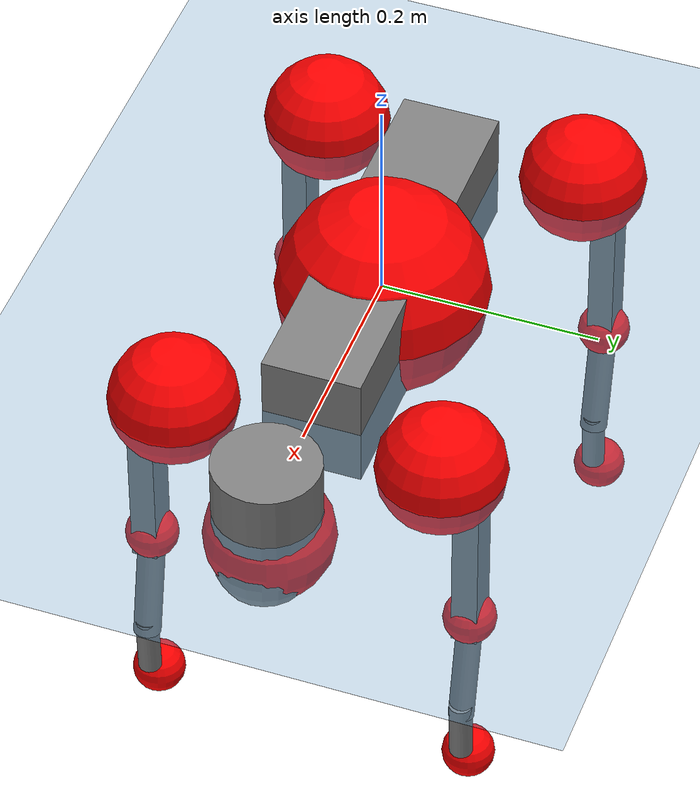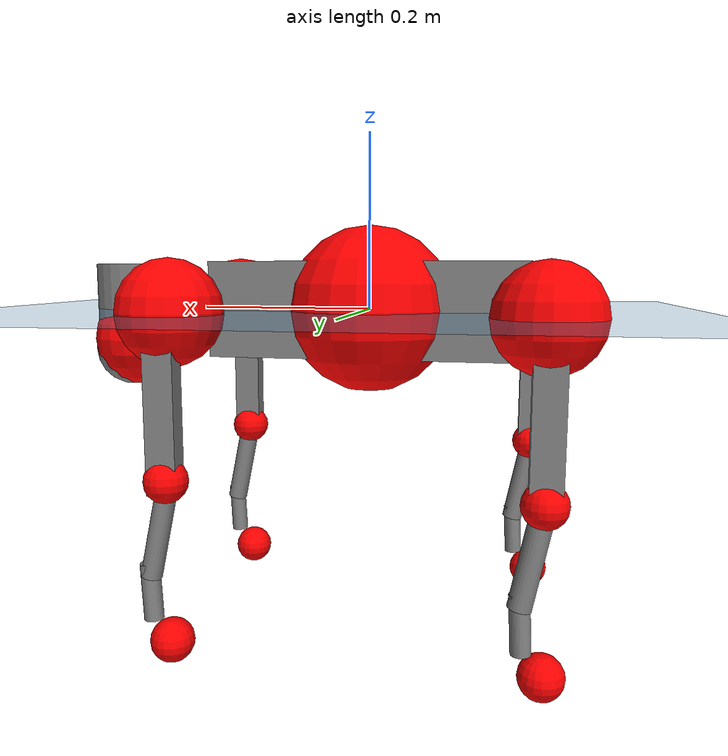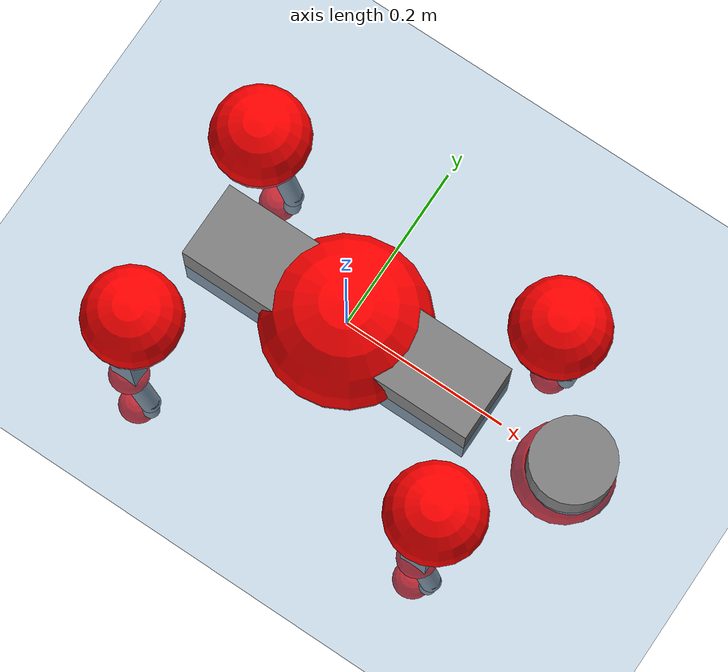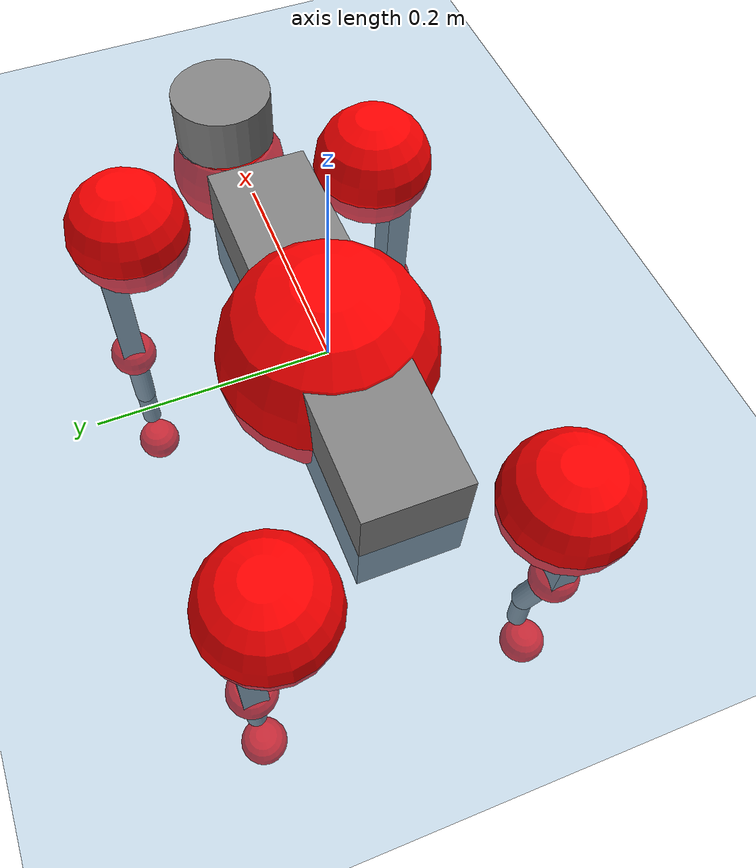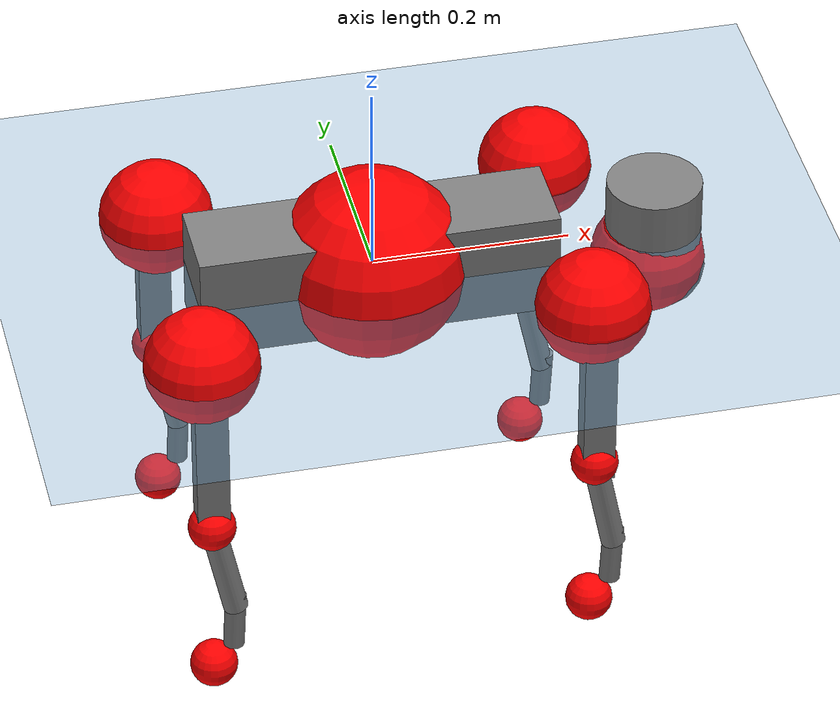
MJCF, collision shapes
<mujoco model="go2">
  <compiler angle="radian" assetdir="assets" balanceinertia="true" inertiafromgeom="false"/>

  <option timestep="0.005" density="1.2" viscosity="2e-05"/>

  <size nkey="1"/>

  <visual>
    <quality shadowsize="8192"/>
    <map shadowclip="0.5"/>
  </visual>

  <default>
    <default class="/">
      <geom contype="0" conaffinity="0" group="1" solref="-1000 -80"/>
      <site size="0.01 0.005 0.005" group="5"/>
      <general forcelimited="true" biastype="affine" gainprm="20" biasprm="0 -20 -0.5"/>
      <default class="go2">
        <joint armature="0.01" damping="0.01" frictionloss="0.2"/>
        <geom condim="1" margin="0.001"/>
        <default class="visual">
          <geom type="mesh" group="2"/>
        </default>
        <default class="collision">
          <geom group="3"/>
          <default class="foot">
            <geom size="0.022 0 0" condim="6" priority="1" friction="0.8 0.02 0.01" solimp="0.015 1 0.022"/>
          </default>
        </default>
        <default class="reward_collision_sphere">
          <geom group="5" rgba="1 0 0 1"/>
        </default>
      </default>
    </default>
  </default>

  <asset>
    <texture type="skybox" colorspace="auto" name="//unnamed_texture_0" builtin="gradient" rgb1="0.95 0.95 0.95" rgb2="0.95 0.95 0.95" width="100" height="600"/>
    <texture type="2d" colorspace="auto" name="texplane" builtin="checker" rgb1="0.345 0.575 0.748" rgb2="0.345 0.575 0.748" markrgb="1 1 1" width="512" height="512"/>
    <material name="MatPlane" class="/" texture="texplane" texuniform="true" texrepeat="2 2" specular="0.9"/>
    <material name="metal" class="/" rgba="0.9 0.95 0.95 1"/>
    <material name="black" class="/" rgba="0 0 0 1"/>
    <material name="white" class="/"/>
    <material name="gray" class="/" rgba="0.671705 0.692426 0.77427 1"/>
    <mesh name="base_0" class="/" file="base_0.obj"/>
    <mesh name="base_1" class="/" file="base_1.obj"/>
    <mesh name="base_2" class="/" file="base_2.obj"/>
    <mesh name="base_3" class="/" file="base_3.obj"/>
    <mesh name="base_4" class="/" file="base_4.obj"/>
    <mesh name="hip_0" class="/" file="hip_0.obj"/>
    <mesh name="hip_1" class="/" file="hip_1.obj"/>
    <mesh name="thigh_0" class="/" file="thigh_0.obj"/>
    <mesh name="thigh_1" class="/" file="thigh_1.obj"/>
    <mesh name="thigh_mirror_0" class="/" file="thigh_mirror_0.obj"/>
    <mesh name="thigh_mirror_1" class="/" file="thigh_mirror_1.obj"/>
    <mesh name="calf_0" class="/" file="calf_0.obj"/>
    <mesh name="calf_1" class="/" file="calf_1.obj"/>
    <mesh name="calf_mirror_0" class="/" file="calf_mirror_0.obj"/>
    <mesh name="calf_mirror_1" class="/" file="calf_mirror_1.obj"/>
    <mesh name="foot" class="/" file="foot.obj"/>
  </asset>

  <worldbody>
    <geom name="floor" class="/" size="100 100 0.125" type="plane" group="0" material="MatPlane"/>
    <light name="toplight_shadow" class="/" pos="0 0 5" dir="0.0990148 0.0990148 -0.990148" type="directional" ambient="0.04 0.04 0.04" diffuse="0.55 0.55 0.55" specular="0.12 0.12 0.12"/>
    <light name="toplight_fill" class="/" pos="0 0 5" dir="0.0990148 0.0990148 -0.990148" type="directional" castshadow="false" ambient="0.04 0.04 0.04" diffuse="0.3 0.3 0.3" specular="0.08 0.08 0.08"/>
    <body name="trunk" childclass="go2" pos="-0.000885046 0.000706232 0.000480224" quat="1 -1.22576e-05 -8.21313e-05 -4.12419e-05">
      <inertial pos="0.0199614 0.000112029 -0.00459584" quat="-0.00122778 0.714596 -0.0005386 0.699536" mass="6.22611" diaginertia="0.113592 0.124214 0.00990912"/>
      <joint name="//unnamed_joint_0" type="free" armature="0" damping="0" frictionloss="0"/>
      <geom name="//unnamed_geom_1" class="visual" material="black" mesh="base_0"/>
      <geom name="//unnamed_geom_2" class="visual" material="black" mesh="base_1"/>
      <geom name="//unnamed_geom_3" class="visual" material="black" mesh="base_2"/>
      <geom name="//unnamed_geom_4" class="visual" material="white" mesh="base_3"/>
      <geom name="//unnamed_geom_5" class="visual" material="gray" mesh="base_4"/>
      <geom name="trunk_1" class="collision" size="0.18156 0.0451246 0.0550182" type="box"/>
      <geom name="trunk_2" class="collision" size="0.0482616 0.0434355" pos="0.288569 0 0.00834257" type="cylinder"/>
      <geom name="trunk_3" class="collision" size="0.0453659" pos="0.296669 0 -0.0500554"/>
      <geom name="//unnamed_geom_9" class="reward_collision_sphere" size="0.0965232"/>
      <geom name="//unnamed_geom_10" class="reward_collision_sphere" size="0.0579139" pos="0.283506 0 -0.0375416"/>
      <site name="imu" pos="-0.0265428 -0.00162511 0.0341539" size="0.00965232"/>
      <camera name="track" pos="0 -2.09783 0" quat="0.707107 0.707107 0 0" mode="trackcom"/>
      <camera name="ego_camera" pos="0.315907 0 0.0375416" quat="-0.5 -0.5 0.5 0.5"/>
      <body name="FL_hip" pos="0.196272 0.0501217 0.000561097" quat="1 0.000137445 0.000287373 -0.000328686">
        <inertial pos="-0.00653191 0.00303872 0.00083282" quat="0.497334 0.500345 0.504408 0.497882" mass="0.609086" diaginertia="0.000937886 0.000752738 0.000192185"/>
        <joint name="FL_hip_joint" pos="0 0 0" axis="0.999999 9.19422e-05 0.00172296" range="-1.04271 1.04343" armature="0.00944914" damping="0.00668735" frictionloss="0.187051"/>
        <geom name="//unnamed_geom_11" class="visual" material="metal" mesh="hip_0"/>
        <geom name="//unnamed_geom_12" class="visual" material="gray" mesh="hip_1"/>
        <geom name="//unnamed_geom_13" class="collision" size="0.0444007 0.0193046" pos="0 0.0839134 0" quat="0.707107 0.707107 0 0" type="cylinder"/>
        <geom name="//unnamed_geom_14" class="reward_collision_sphere" size="0.0579139" pos="0 0.0734242 0"/>
        <body name="FL_thigh" pos="-0.000786398 0.100608 0.000465886" quat="1 -3.62376e-05 -3.766e-05 2.98043e-06">
          <inertial pos="-0.00310158 -0.0230041 -0.0267966" quat="0.82936 0.0860173 -0.0203539 0.551678" mass="1.03291" diaginertia="0.00634656 0.00745133 0.000357571"/>
          <joint name="FL_thigh_joint" pos="0 0 0" axis="-0.000155368 1 0.000223452" stiffness="0.0113367" range="-1.56541 3.48885" armature="0.00939723" damping="0" frictionloss="0.184612"/>
          <geom name="//unnamed_geom_15" class="visual" material="metal" mesh="thigh_0"/>
          <geom name="//unnamed_geom_16" class="visual" material="gray" mesh="thigh_1"/>
          <geom name="//unnamed_geom_17" class="collision" size="0.102797 0.0118241 0.016409" pos="0 0 -0.0888484" quat="0.707107 0 0.707107 0" type="box"/>
          <body name="FL_calf" pos="-0.000909928 -0.000213157 -0.177423" quat="1 0.000305595 -1.99375e-05 -0.000309323">
            <inertial pos="0.00553546 -0.00153793 -0.117041" quat="0.710061 0.000900311 -0.00368556 0.70413" mass="0.217632" diaginertia="0.00158845 0.00183842 2.17055e-05"/>
            <joint name="FL_calf_joint" pos="0 0 0" axis="0.00572852 0.999966 0.00596064" stiffness="0.0018873" range="-2.72801 -0.834125" armature="0.0101525" damping="0.00560163" frictionloss="0.189768"/>
            <geom name="//unnamed_geom_18" class="visual" material="gray" mesh="calf_0"/>
            <geom name="//unnamed_geom_19" class="visual" material="black" mesh="calf_1"/>
            <geom name="FL_calf0" class="collision" size="0.0115828 0.0579139" pos="0.00810018 0 -0.0500554" quat="0.994493 0 -0.104807 0" type="cylinder"/>
            <geom name="//unnamed_geom_21" class="collision" size="0.0106176 0.0313701" pos="0.0202505 0 -0.12347" quat="0.999688 0 0.0249974 0" type="cylinder"/>
            <geom name="//unnamed_geom_22" class="visual" pos="0 0 -0.177697" quat="1 0 0 0" material="black" mesh="foot"/>
            <geom name="FL_foot" class="foot" size="0.0156061" pos="-0.00202505 0 -0.177697"/>
            <geom name="//unnamed_geom_24" class="reward_collision_sphere" size="0.0241308"/>
            <geom name="//unnamed_geom_25" class="reward_collision_sphere" size="0.0241308" pos="-0.00202505 0 -0.177697"/>
            <site name="FL_foot" class="foot" pos="-0.00202505 0 -0.177697" size="0.00965232"/>
          </body>
        </body>
      </body>
      <body name="FR_hip" pos="0.196122 -0.0477297 0.00161767" quat="1 -4.21505e-06 -6.05098e-05 1.19637e-05">
        <inertial pos="-0.00527511 -0.001634 -0.000398717" quat="0.497378 0.504809 0.500231 0.497545" mass="0.616246" diaginertia="0.000927286 0.000745365 0.000194332"/>
        <joint name="FR_hip_joint" pos="0 0 0" axis="0.999997 -0.00256297 -0.000244183" stiffness="0.00451666" range="-1.06879 1.04765" armature="0.00913846" damping="0.0188063" frictionloss="0.202429"/>
        <geom name="//unnamed_geom_26" class="visual" pos="0 1.87003e-09 8.02095e-08" quat="4.63268e-05 1 0 0" material="metal" mesh="hip_0"/>
        <geom name="//unnamed_geom_27" class="visual" pos="0 3.03155e-09 -1.98389e-07" quat="4.63268e-05 1 0 0" material="gray" mesh="hip_1"/>
        <geom name="//unnamed_geom_28" class="collision" size="0.0444007 0.0193046" pos="0 -0.0839134 0" quat="0.707107 0.707107 0 0" type="cylinder"/>
        <geom name="//unnamed_geom_29" class="reward_collision_sphere" size="0.0579139" pos="0 -0.0734242 0"/>
        <body name="FR_thigh" pos="3.77902e-05 -0.100519 0.00139793" quat="1 0.000129912 0.00017596 -5.08614e-06">
          <inertial pos="-0.00302912 0.0223509 -0.0272383" quat="0.552375 -0.018739 0.0841754 0.829123" mass="1.02355" diaginertia="0.0063725 0.00751112 0.000357562"/>
          <joint name="FR_thigh_joint" pos="0 0 0" axis="-0.00311873 -0.999992 -0.00246645" range="-3.49346 1.58053" armature="0.00967557" damping="0.00991698" frictionloss="0.186859"/>
          <geom name="//unnamed_geom_30" class="visual" material="metal" mesh="thigh_mirror_0"/>
          <geom name="//unnamed_geom_31" class="visual" material="gray" mesh="thigh_mirror_1"/>
          <geom name="//unnamed_geom_32" class="collision" size="0.102797 0.0118241 0.016409" pos="0 0 -0.0888484" quat="0.707107 0 0.707107 0" type="box"/>
          <body name="FR_calf" pos="-0.00141961 0.000847216 -0.176799" quat="1 5.19677e-05 1.69564e-05 3.82821e-05">
            <inertial pos="0.00547567 0.000863566 -0.118235" quat="0.702432 -0.00496255 0.00229407 0.711729" mass="0.217481" diaginertia="0.00158521 0.00187026 2.13642e-05"/>
            <joint name="FR_calf_joint" pos="0 0 0" axis="0.00565584 -0.999983 0.00133729" stiffness="0.00252417" range="0.835577 2.72568" armature="0.00951608" damping="0.00385309" frictionloss="0.196652"/>
            <geom name="//unnamed_geom_33" class="visual" material="gray" mesh="calf_mirror_0"/>
            <geom name="//unnamed_geom_34" class="visual" material="black" mesh="calf_mirror_1"/>
            <geom name="FR_calf0" class="collision" size="0.012548 0.0579139" pos="0.0101252 0 -0.0500554" quat="0.995004 0 -0.0998334 0" type="cylinder"/>
            <geom name="//unnamed_geom_36" class="collision" size="0.0106176 0.0313701" pos="0.0202505 0 -0.12347" quat="0.999688 0 0.0249974 0" type="cylinder"/>
            <geom name="//unnamed_geom_37" class="visual" pos="0 0 -0.177697" quat="1 0 0 0" material="black" mesh="foot"/>
            <geom name="FR_foot" class="foot" size="0.0216705" pos="-0.00202505 0 -0.177697"/>
            <geom name="//unnamed_geom_39" class="reward_collision_sphere" size="0.0241308"/>
            <geom name="//unnamed_geom_40" class="reward_collision_sphere" size="0.0241308" pos="-0.00202505 0 -0.177697"/>
            <site name="FR_foot" class="foot" pos="-0.00202505 0 -0.177697" size="0.00965232"/>
          </body>
        </body>
      </body>
      <body name="RL_hip" pos="-0.195129 0.0480019 -0.00151676" quat="1 0.000751222 0.000398761 -0.000256035">
        <inertial pos="0.00602915 0.00206764 0.000427931" quat="0.505507 0.498317 0.496935 0.499197" mass="0.610778" diaginertia="0.000937282 0.000748348 0.000192432"/>
        <joint name="RL_hip_joint" pos="0 0 0" axis="-0.999819 -0.0176583 0.00701931" range="-1.06092 1.05336" armature="0.00961386" damping="0.0184345" frictionloss="0.188906"/>
        <geom name="//unnamed_geom_41" class="visual" pos="-1.55298e-09 0 -3.04419e-07" quat="4.63268e-05 0 1 0" material="metal" mesh="hip_0"/>
        <geom name="//unnamed_geom_42" class="visual" pos="-2.51756e-09 0 -2.69977e-07" quat="4.63268e-05 0 1 0" material="gray" mesh="hip_1"/>
        <geom name="//unnamed_geom_43" class="collision" size="0.0444007 0.0193046" pos="0 0.0839134 0" quat="0.707107 0.707107 0 0" type="cylinder"/>
        <geom name="//unnamed_geom_44" class="reward_collision_sphere" size="0.0579139" pos="0 0.0734242 0"/>
        <body name="RL_thigh" pos="-0.00101683 0.0986963 -0.000993134" quat="1 0.000145419 0.000129647 -0.000364283">
          <inertial pos="-0.00386624 -0.0237153 -0.0277842" quat="0.829603 0.0839926 -0.0208824 0.551605" mass="1.03675" diaginertia="0.00634801 0.00745234 0.000354704"/>
          <joint name="RL_thigh_joint" pos="0 0 0" axis="0.000858946 0.999973 0.00733934" range="-0.528637 4.54556" armature="0.0099994" damping="0.000126326" frictionloss="0.195542"/>
          <geom name="//unnamed_geom_45" class="visual" material="metal" mesh="thigh_0"/>
          <geom name="//unnamed_geom_46" class="visual" material="gray" mesh="thigh_1"/>
          <geom name="//unnamed_geom_47" class="collision" size="0.102797 0.0118241 0.016409" pos="0 0 -0.0888484" quat="0.707107 0 0.707107 0" type="box"/>
          <body name="RL_calf" pos="8.36832e-05 -0.000192862 -0.17939" quat="1 -6.27045e-05 -0.000169695 1.80882e-05">
            <inertial pos="0.00636262 -0.000416453 -0.118723" quat="0.710676 0.0013596 -0.00452772 0.703503" mass="0.217235" diaginertia="0.00158938 0.00185649 2.16025e-05"/>
            <joint name="RL_calf_joint" pos="0 0 0" axis="-0.00617103 0.999939 0.00911579" range="-2.726 -0.837044" armature="0.00983651" damping="0" frictionloss="0.194165"/>
            <geom name="//unnamed_geom_48" class="visual" material="gray" mesh="calf_0"/>
            <geom name="//unnamed_geom_49" class="visual" material="black" mesh="calf_1"/>
            <geom name="RL_calf0" class="collision" size="0.012548 0.0579139" pos="0.0101252 0 -0.0500554" quat="0.995004 0 -0.0998334 0" type="cylinder"/>
            <geom name="//unnamed_geom_51" class="collision" size="0.0106176 0.0313701" pos="0.0202505 0 -0.12347" quat="0.999688 0 0.0249974 0" type="cylinder"/>
            <geom name="//unnamed_geom_52" class="visual" pos="0 0 -0.177697" quat="1 0 0 0" material="black" mesh="foot"/>
            <geom name="RL_foot" class="foot" size="0.0189528" pos="-0.00202505 0 -0.177697"/>
            <geom name="//unnamed_geom_54" class="reward_collision_sphere" size="0.0241308"/>
            <geom name="//unnamed_geom_55" class="reward_collision_sphere" size="0.0241308" pos="-0.00202505 0 -0.177697"/>
            <site name="RL_foot" class="foot" pos="-0.00202505 0 -0.177697" size="0.00965232"/>
          </body>
        </body>
      </body>
      <body name="RR_hip" pos="-0.195828 -0.051027 -0.00243094" quat="1 -0.000376443 -0.000242472 5.74555e-06">
        <inertial pos="0.00536808 -0.00221099 2.88087e-05" quat="0.500291 0.497789 0.498384 0.503516" mass="0.608673" diaginertia="0.000929059 0.000747851 0.000195104"/>
        <joint name="RR_hip_joint" pos="0 0 0" axis="-0.999998 0.00194535 0.000517707" range="-1.03705 1.04839" armature="0.0100625" damping="0.0140301" frictionloss="0.19105"/>
        <geom name="//unnamed_geom_56" class="visual" pos="1.55424e-09 1.87003e-09 -3.84629e-07" quat="2.14617e-09 4.63268e-05 4.63268e-05 -1" material="metal" mesh="hip_0"/>
        <geom name="//unnamed_geom_57" class="visual" pos="2.51445e-09 3.03155e-09 -7.15878e-08" quat="2.14617e-09 4.63268e-05 4.63268e-05 -1" material="gray" mesh="hip_1"/>
        <geom name="//unnamed_geom_58" class="collision" size="0.0444007 0.0193046" pos="0 -0.0839134 0" quat="0.707107 0.707107 0 0" type="cylinder"/>
        <geom name="//unnamed_geom_59" class="reward_collision_sphere" size="0.0579139" pos="0 -0.0734242 0"/>
        <body name="RR_thigh" pos="0.00102918 -0.100541 -0.00182727" quat="1 -5.89901e-05 3.52549e-05 -6.29165e-05">
          <inertial pos="-0.00357079 0.0241673 -0.0276098" quat="0.551604 -0.0200929 0.0847352 0.829547" mass="1.05179" diaginertia="0.00640958 0.00744116 0.000354729"/>
          <joint name="RR_thigh_joint" pos="0 0 0" axis="0.00246449 -0.999981 -0.00566178" stiffness="0.00150523" range="-4.54873 0.506065" armature="0.00918749" damping="0.0156405" frictionloss="0.19054"/>
          <geom name="//unnamed_geom_60" class="visual" material="metal" mesh="thigh_mirror_0"/>
          <geom name="//unnamed_geom_61" class="visual" material="gray" mesh="thigh_mirror_1"/>
          <geom name="//unnamed_geom_62" class="collision" size="0.102797 0.0118241 0.016409" pos="0 0 -0.0888484" quat="0.707107 0 0.707107 0" type="box"/>
          <body name="RR_calf" pos="-0.000685935 -0.00156144 -0.178711" quat="1 6.92854e-05 -7.11046e-05 -6.92671e-05">
            <inertial pos="0.00751157 0.000587701 -0.119056" quat="0.70266 -0.00601664 0.00296781 0.711494" mass="0.217533" diaginertia="0.00154698 0.00184841 2.09842e-05"/>
            <joint name="RR_calf_joint" pos="0 0 0" axis="-0.00123405 -0.999995 -0.00274513" range="0.825844 2.75543" armature="0.00985017" damping="0.0102521" frictionloss="0.195316"/>
            <geom name="//unnamed_geom_63" class="visual" material="gray" mesh="calf_mirror_0"/>
            <geom name="//unnamed_geom_64" class="visual" material="black" mesh="calf_mirror_1"/>
            <geom name="RR_calf0" class="collision" size="0.012548 0.0579139" pos="0.0101252 0 -0.0500554" quat="0.995004 0 -0.0998334 0" type="cylinder"/>
            <geom name="//unnamed_geom_66" class="collision" size="0.0106176 0.0313701" pos="0.0202505 0 -0.12347" quat="0.999688 0 0.0249974 0" type="cylinder"/>
            <geom name="//unnamed_geom_67" class="visual" pos="0 0 -0.177697" quat="1 0 0 0" material="black" mesh="foot"/>
            <geom name="RR_foot" class="foot" size="0.0231158" pos="-0.00202505 0 -0.177697"/>
            <geom name="//unnamed_geom_69" class="reward_collision_sphere" size="0.0241308"/>
            <geom name="//unnamed_geom_70" class="reward_collision_sphere" size="0.0241308" pos="-0.00202505 0 -0.177697"/>
            <site name="RR_foot" class="foot" pos="-0.00202505 0 -0.177697" size="0.00965232"/>
          </body>
        </body>
      </body>
    </body>
  </worldbody>

  <contact>
    <pair class="/" geom1="floor" geom2="FL_foot" name="//unnamed_contact_0"/>
    <pair class="/" geom1="floor" geom2="FR_foot" name="//unnamed_contact_1"/>
    <pair class="/" geom1="floor" geom2="RL_foot" name="//unnamed_contact_2"/>
    <pair class="/" geom1="floor" geom2="RR_foot" name="//unnamed_contact_3"/>
  </contact>

  <actuator>
    <general name="FL_hip" class="/" joint="FL_hip_joint" forcerange="-23.0107 23.0107" gainprm="19.3865" biasprm="0 -19.3865 -0.483266"/>
    <general name="FL_thigh" class="/" joint="FL_thigh_joint" forcerange="-23.7104 23.7104" gainprm="19.3865" biasprm="0 -19.3865 -0.483266"/>
    <general name="FL_calf" class="/" joint="FL_calf_joint" forcerange="-43.3895 43.3895" gainprm="19.3865" biasprm="0 -19.3865 -0.483266"/>
    <general name="FR_hip" class="/" joint="FR_hip_joint" forcerange="-23.9146 23.9146" gainprm="19.3865" biasprm="0 -19.3865 -0.483266"/>
    <general name="FR_thigh" class="/" joint="FR_thigh_joint" forcerange="-22.7945 22.7945" gainprm="19.3865" biasprm="0 -19.3865 -0.483266"/>
    <general name="FR_calf" class="/" joint="FR_calf_joint" forcerange="-44.3942 44.3942" gainprm="19.3865" biasprm="0 -19.3865 -0.483266"/>
    <general name="RL_hip" class="/" joint="RL_hip_joint" forcerange="-22.7653 22.7653" gainprm="19.3865" biasprm="0 -19.3865 -0.483266"/>
    <general name="RL_thigh" class="/" joint="RL_thigh_joint" forcerange="-22.9329 22.9329" gainprm="19.3865" biasprm="0 -19.3865 -0.483266"/>
    <general name="RL_calf" class="/" joint="RL_calf_joint" forcerange="-44.2221 44.2221" gainprm="19.3865" biasprm="0 -19.3865 -0.483266"/>
    <general name="RR_hip" class="/" joint="RR_hip_joint" forcerange="-23.1685 23.1685" gainprm="19.3865" biasprm="0 -19.3865 -0.483266"/>
    <general name="RR_thigh" class="/" joint="RR_thigh_joint" forcerange="-22.8459 22.8459" gainprm="19.3865" biasprm="0 -19.3865 -0.483266"/>
    <general name="RR_calf" class="/" joint="RR_calf_joint" forcerange="-45.0566 45.0566" gainprm="19.3865" biasprm="0 -19.3865 -0.483266"/>
  </actuator>

  <sensor>
    <gyro site="imu" name="imu_angular_velocity"/>
    <velocimeter site="imu" name="imu_linear_velocity"/>
    <framelinvel objtype="site" objname="FL_foot" name="FL_foot_global_linear_velocity"/>
    <framelinvel objtype="site" objname="FR_foot" name="FR_foot_global_linear_velocity"/>
    <framelinvel objtype="site" objname="RL_foot" name="RL_foot_global_linear_velocity"/>
    <framelinvel objtype="site" objname="RR_foot" name="RR_foot_global_linear_velocity"/>
  </sensor>

  <keyframe>
    <key name="home" qpos="0 0 0.325 1 0 0 0 0.1 0.8 -1.5 -0.1 -0.8 1.5 -0.1 0.8 -1.5 0.1 -0.8 1.5"/>
  </keyframe>
</mujoco>
